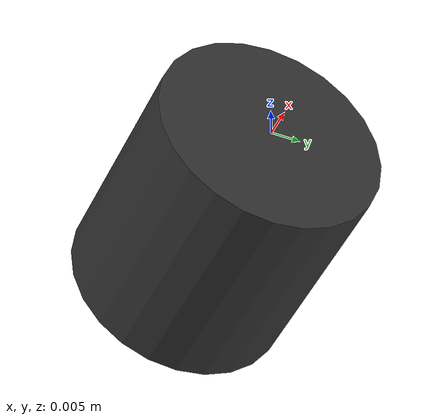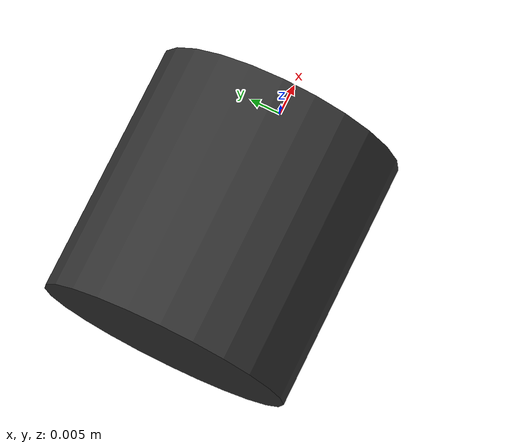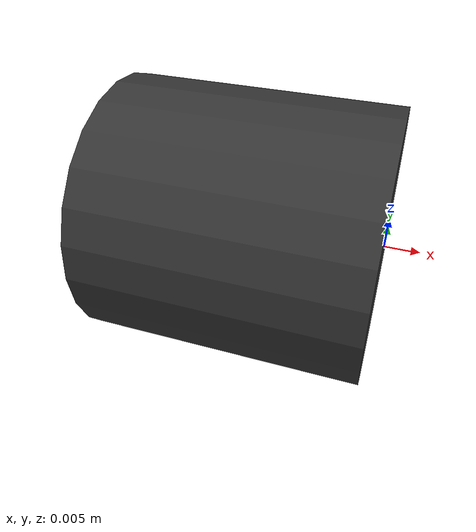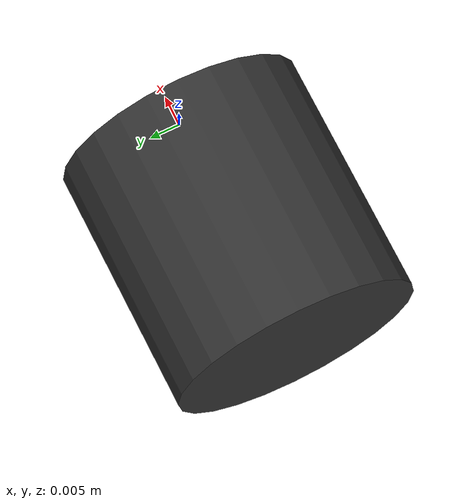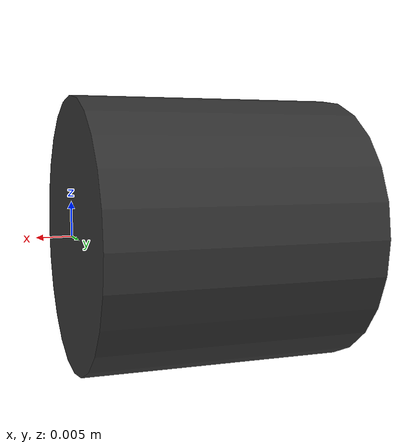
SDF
<?xml version="1.0" ?>
<sdf version="1.12">
  <model name="camera">
    <link name="camera_link">
      <inertial auto="true">
        <mass>0.05</mass>
      </inertial>
      <collision name="camera_collision">
        <pose>-0.02 0 0 0 1.5707963 0</pose>
        <geometry>
          <cylinder>
            <radius>0.02</radius>
            <length>0.04</length>
          </cylinder>
        </geometry>
      </collision>
      <visual name="camera_visual">
        <pose>-0.02 0 0 0 1.5707963 0</pose>
        <geometry>
          <cylinder>
            <radius>0.02</radius>
            <length>0.04</length>
          </cylinder>
        </geometry>
        <material>
          <ambient>0.1 0.1 0.1 1.0</ambient>
          <diffuse>0.2 0.2 0.2 1.0</diffuse>
          <specular>0.8 0.8 0.8 1.0</specular>
        </material>
      </visual>
      <sensor name="camera" type="camera">
        <update_rate>30</update_rate>
        <camera>
          <horizontal_fov>1.5707963</horizontal_fov>
          <image>
            <width>680</width>
            <height>480</height>
          </image>
        </camera>
      </sensor>
    </link>
  </model>
</sdf>
